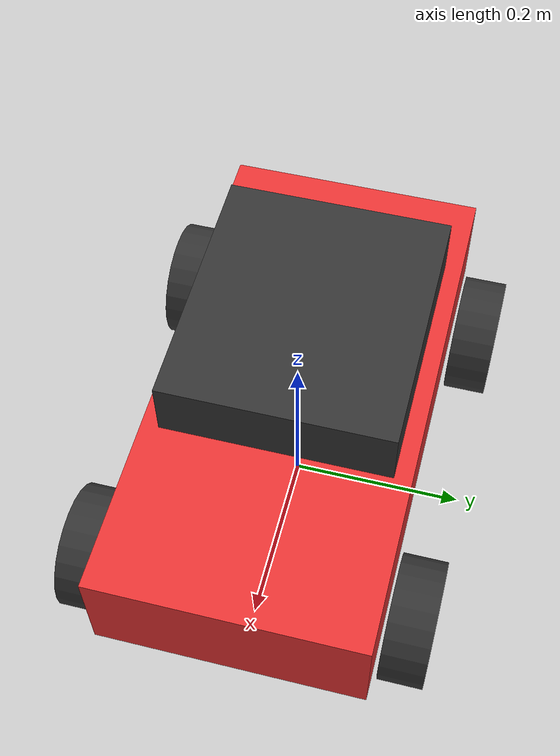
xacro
<?xml version="1.0"?>
<!-- A car-like (Ackermann) robot: two steering joints (revolute) + four wheels (continuous) -->
<robot name="ackermann" xmlns:xacro="http://www.ros.org/wiki/xacro">
  <xacro:include filename="../../common/urdf/macros.xacro"/>
  <xacro:property name="wr" value="0.07"/>
  <link name="base_footprint"/>
  <joint name="base_joint" type="fixed"><parent link="base_footprint"/><child link="base_link"/><origin xyz="0 0 ${wr}"/></joint>
  <link name="base_link">
    <visual><origin xyz="0 0 0.06"/><geometry><box size="0.60 0.30 0.12"/></geometry><material name="red"/></visual>
    <visual><origin xyz="-0.05 0 0.15"/><geometry><box size="0.30 0.26 0.08"/></geometry><material name="dark_grey"/></visual>
    <collision><origin xyz="0 0 0.06"/><geometry><box size="0.60 0.30 0.12"/></geometry></collision>
    <xacro:box_inertia m="5.0" x="0.60" y="0.30" z="0.12" xyz="0 0 0.06"/>
  </link>
  <xacro:macro name="wheel_link" params="name">
    <link name="${name}">
      <visual><origin rpy="${pi/2} 0 0"/><geometry><cylinder radius="${wr}" length="0.05"/></geometry><material name="dark_grey"/></visual>
      <collision><origin rpy="${pi/2} 0 0"/><geometry><cylinder radius="${wr}" length="0.05"/></geometry></collision>
      <xacro:cylinder_inertia m="0.3" r="${wr}" h="0.05" rpy="${pi/2} 0 0"/>
    </link>
  </xacro:macro>
  <xacro:macro name="rear_wheel" params="side s">
    <joint name="rear_${side}_wheel_joint" type="continuous">
      <parent link="base_link"/><child link="rear_${side}_wheel"/><origin xyz="-0.20 ${s*0.18} 0"/><axis xyz="0 1 0"/>
    </joint>
    <xacro:wheel_link name="rear_${side}_wheel"/>
  </xacro:macro>
  <xacro:macro name="front_wheel" params="side s">
    <joint name="front_${side}_steer_joint" type="revolute">
      <parent link="base_link"/><child link="front_${side}_steer"/><origin xyz="0.20 ${s*0.18} 0"/><axis xyz="0 0 1"/>
      <limit lower="-0.6" upper="0.6" effort="5" velocity="2"/>
    </joint>
    <link name="front_${side}_steer">
      <visual><geometry><cylinder radius="0.015" length="0.04"/></geometry><material name="light_grey"/></visual>
      <collision><geometry><cylinder radius="0.015" length="0.04"/></geometry></collision>
      <xacro:cylinder_inertia m="0.05" r="0.015" h="0.04"/>
    </link>
    <joint name="front_${side}_wheel_joint" type="continuous">
      <parent link="front_${side}_steer"/><child link="front_${side}_wheel"/><axis xyz="0 1 0"/>
    </joint>
    <xacro:wheel_link name="front_${side}_wheel"/>
  </xacro:macro>
  <xacro:rear_wheel side="left" s="1"/>
  <xacro:rear_wheel side="right" s="-1"/>
  <xacro:front_wheel side="left" s="1"/>
  <xacro:front_wheel side="right" s="-1"/>
</robot>

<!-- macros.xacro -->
<!-- Shared materials and inertia macros (solid box, cylinder along Z, sphere) -->
<robot xmlns:xacro="http://www.ros.org/wiki/xacro">
  <material name="orange"><color rgba="1.0 0.55 0.0 1.0"/></material>
  <material name="dark_grey"><color rgba="0.2 0.2 0.2 1.0"/></material>
  <material name="light_grey"><color rgba="0.75 0.75 0.78 1.0"/></material>
  <material name="sky_blue"><color rgba="0.3 0.7 1.0 1.0"/></material>
  <material name="green"><color rgba="0.2 0.75 0.35 1.0"/></material>
  <material name="red"><color rgba="0.9 0.2 0.2 1.0"/></material>
  <material name="white"><color rgba="0.95 0.95 0.95 1.0"/></material>
  <material name="prop_blue"><color rgba="0.3 0.6 1.0 0.6"/></material>

  <xacro:macro name="box_inertia" params="m x y z xyz:='0 0 0' rpy:='0 0 0'">
    <inertial>
      <origin xyz="${xyz}" rpy="${rpy}"/>
      <mass value="${m}"/>
      <inertia ixx="${m*(y*y+z*z)/12}" ixy="0" ixz="0" iyy="${m*(x*x+z*z)/12}" iyz="0" izz="${m*(x*x+y*y)/12}"/>
    </inertial>
  </xacro:macro>
  <xacro:macro name="cylinder_inertia" params="m r h xyz:='0 0 0' rpy:='0 0 0'">
    <inertial>
      <origin xyz="${xyz}" rpy="${rpy}"/>
      <mass value="${m}"/>
      <inertia ixx="${m*(3*r*r+h*h)/12}" ixy="0" ixz="0" iyy="${m*(3*r*r+h*h)/12}" iyz="0" izz="${m*r*r/2}"/>
    </inertial>
  </xacro:macro>
  <xacro:macro name="sphere_inertia" params="m r xyz:='0 0 0'">
    <inertial>
      <origin xyz="${xyz}"/>
      <mass value="${m}"/>
      <inertia ixx="${2*m*r*r/5}" ixy="0" ixz="0" iyy="${2*m*r*r/5}" iyz="0" izz="${2*m*r*r/5}"/>
    </inertial>
  </xacro:macro>
</robot>
